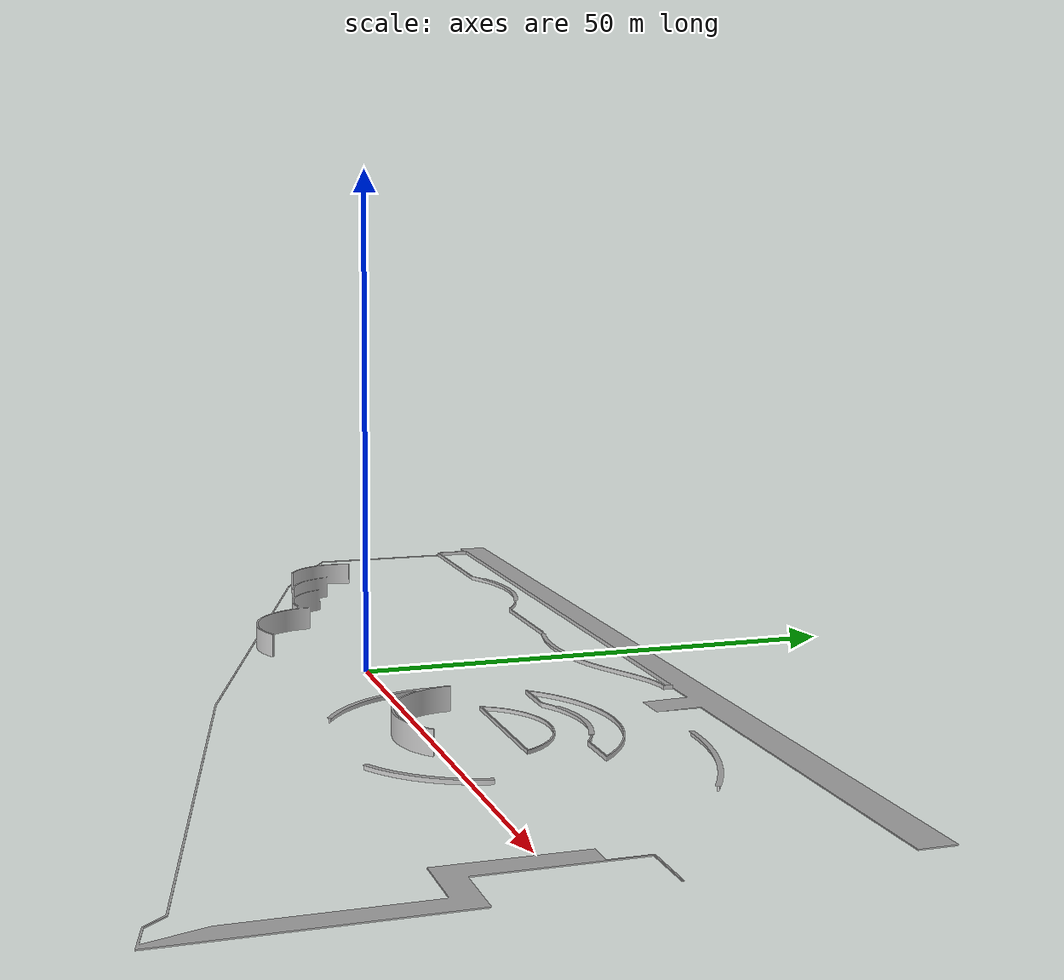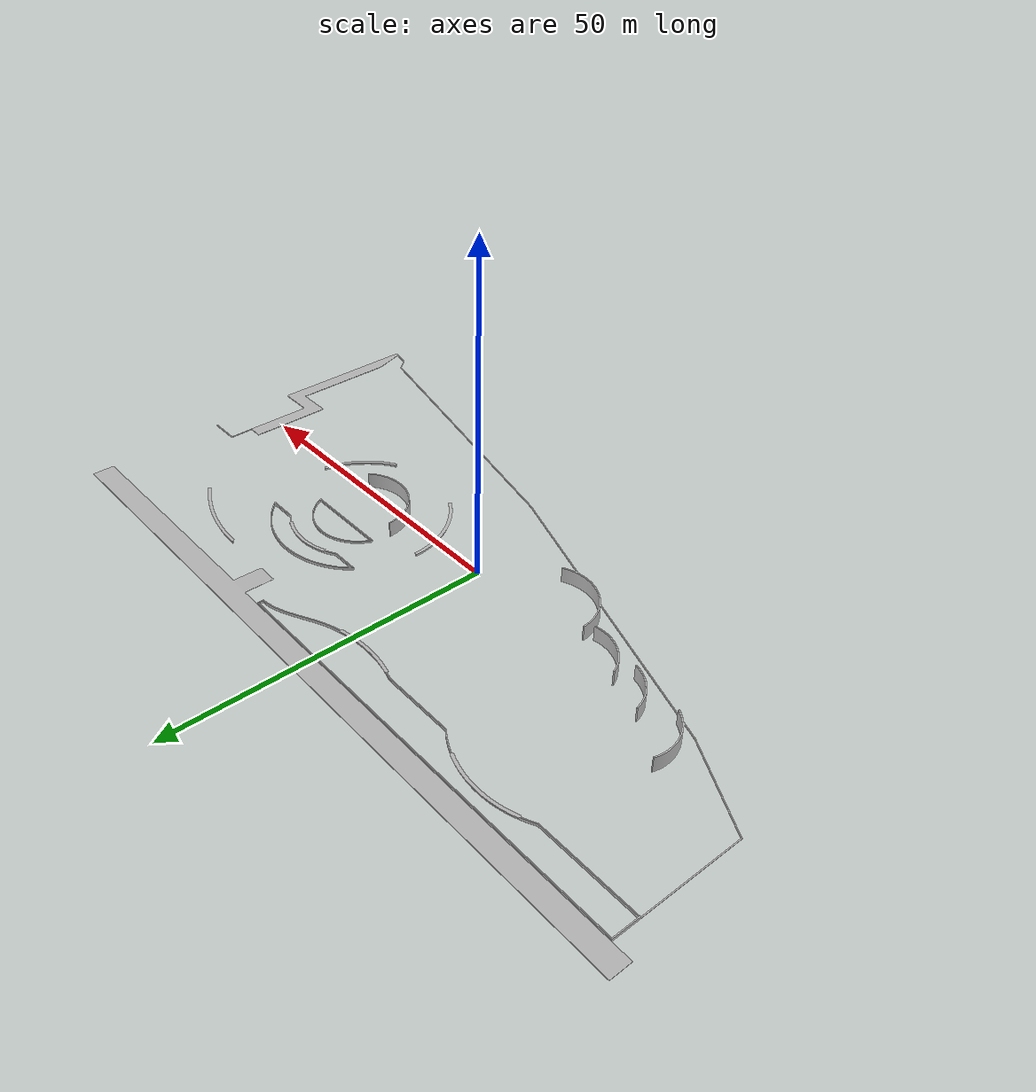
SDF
<?xml version='1.0' ?>
<sdf version='1.6'>
  <model name="senai_cimatec">
    <pose>-30 9 -.1  0 0 0</pose>
    <static>true</static>
    <link name="building_structures">
      <visual name="visual">
        <geometry>
          <mesh><uri>file://senai_cimatec/mesh/senai_cimatec.dae</uri></mesh>
        </geometry>
      </visual>
      <collision name='collision'>
        <geometry>
          <mesh>
            <uri>file://senai_cimatec/mesh/senai_cimatec.dae</uri>
          </mesh>
        </geometry>
        <surface>
          <bounce/>
          <friction>
            <ode/>
          </friction>
          <contact>
            <ode/>
          </contact>
        </surface>
      </collision>
      <gravity>1</gravity>
    </link>
  </model>
</sdf>
